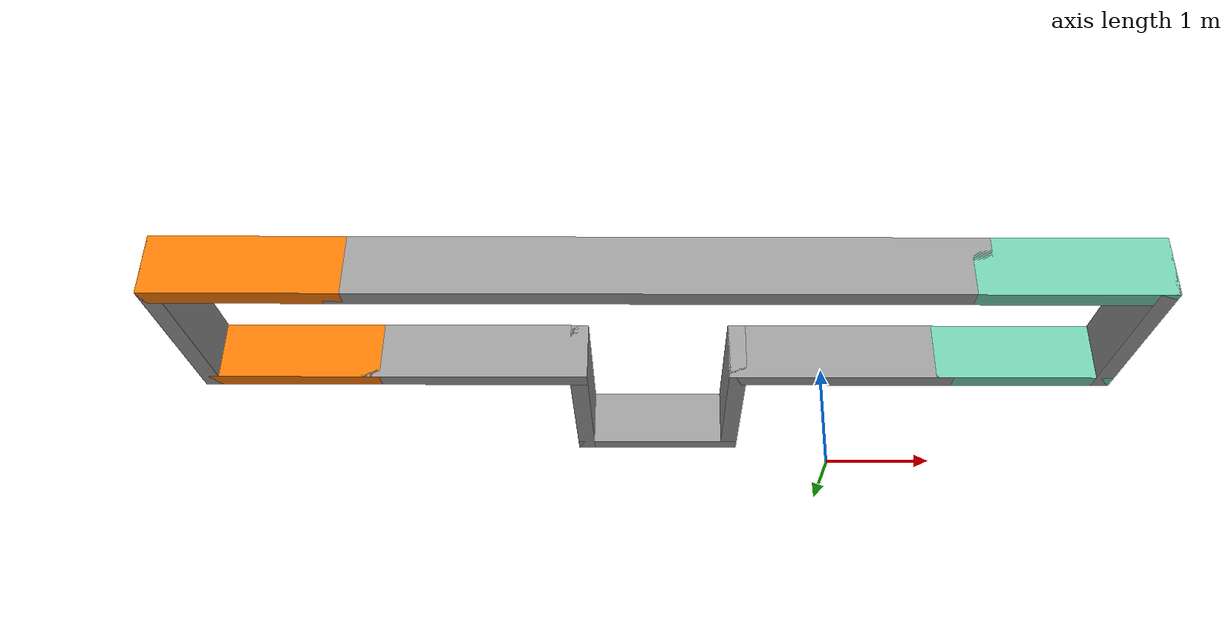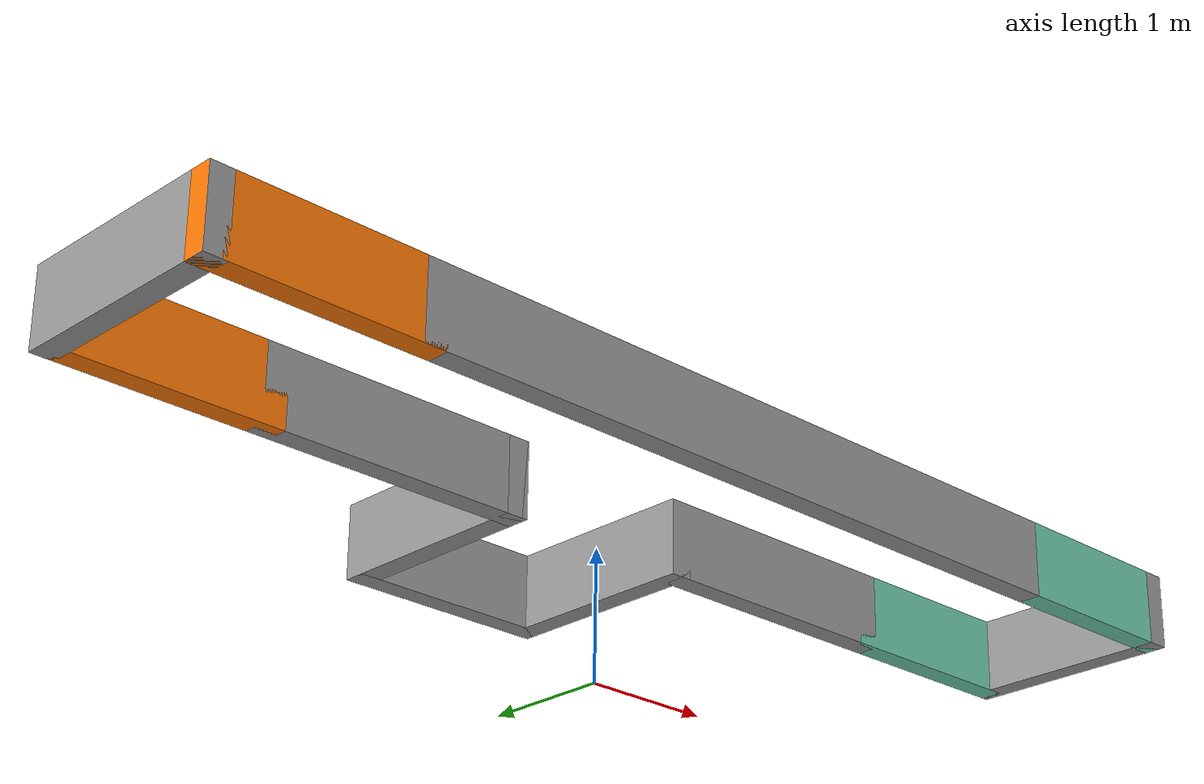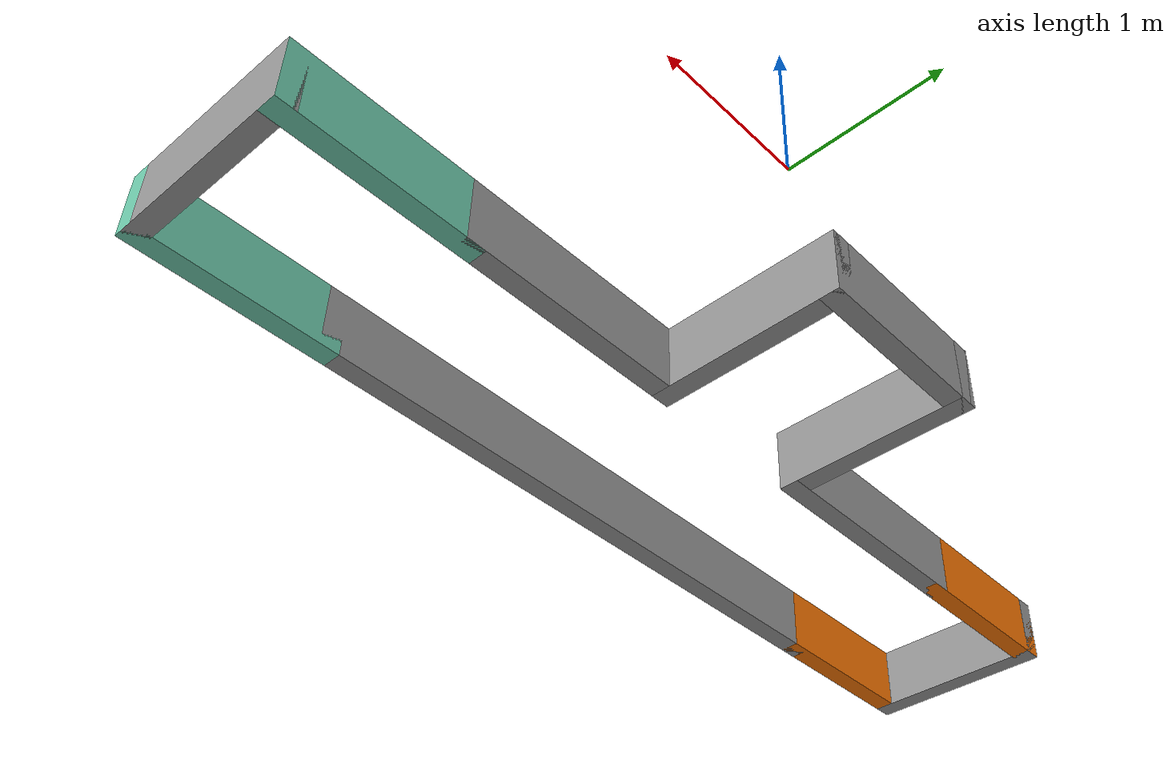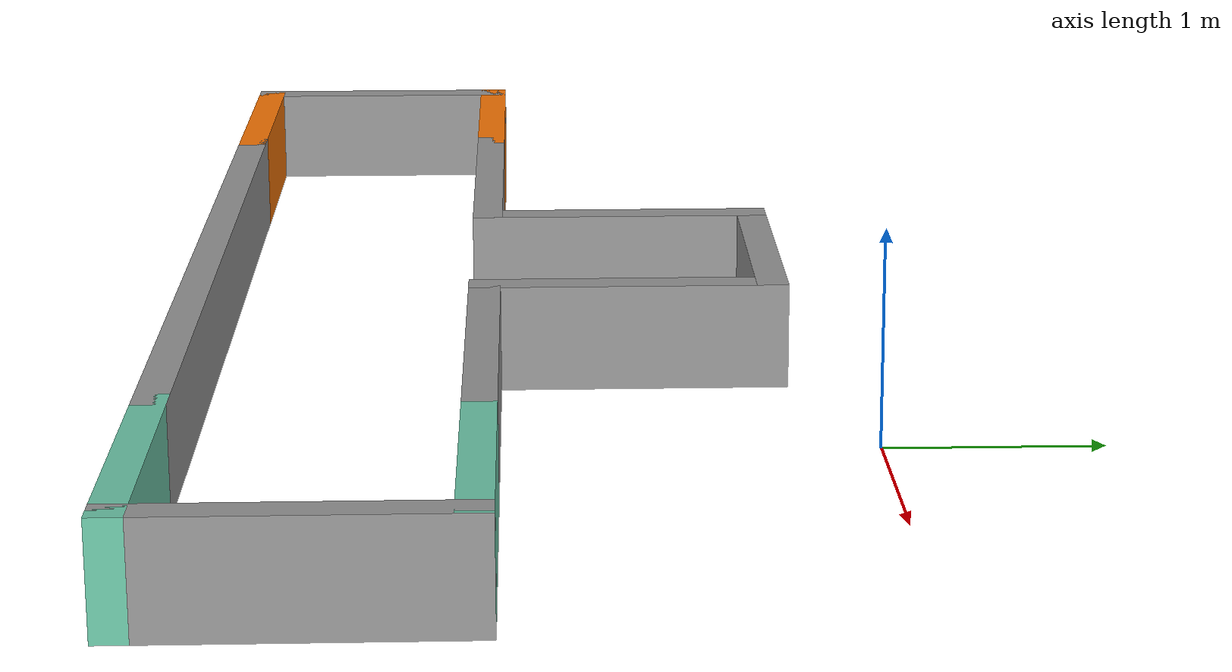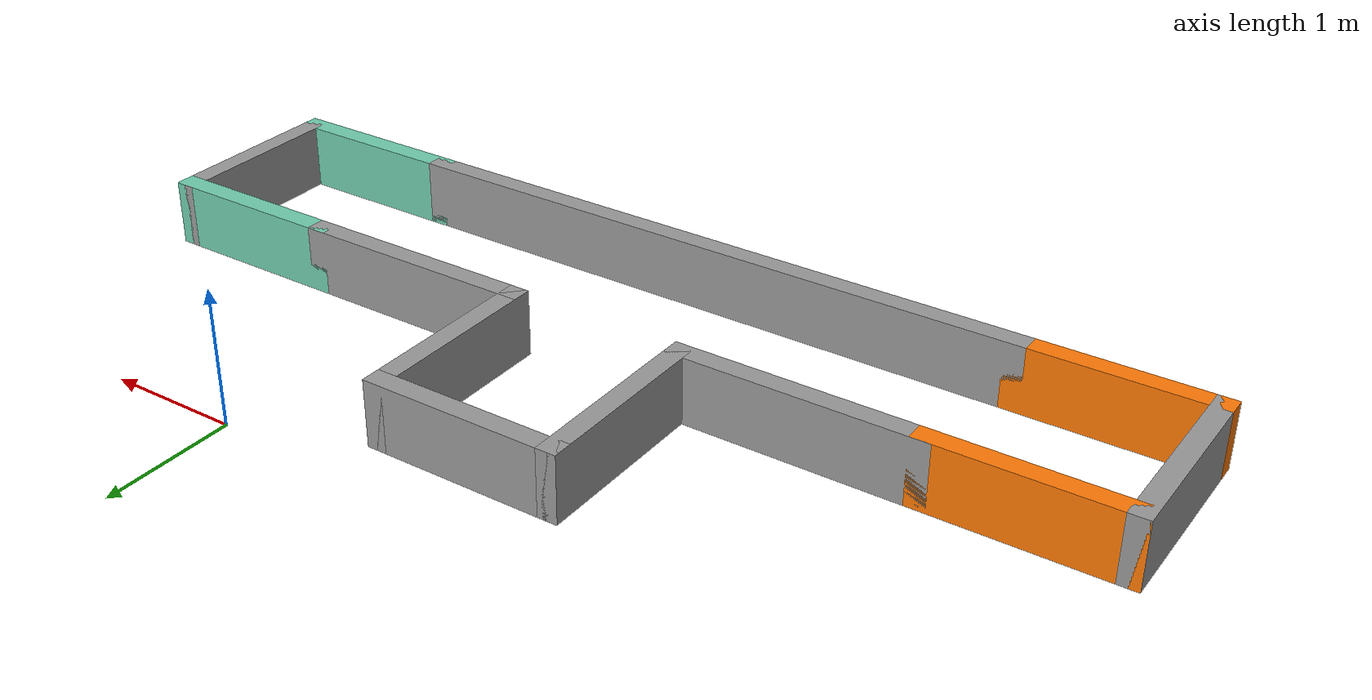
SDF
<sdf version='1.6'>
  <model name='mission5_map.world'>
    <pose frame=''>-1.675 -1.76 0 0 -0 0</pose>
    <link name='Wall_0'>
      <collision name='Wall_0_Collision'>
        <geometry>
          <box>
            <size>1.5 0.15 0.5</size>
          </box>
        </geometry>
        <pose frame=''>0 0 0.25 0 -0 0</pose>
      </collision>
      <visual name='Wall_0_Visual'>
        <pose frame=''>0 0 0.25 0 -0 0</pose>
        <geometry>
          <box>
            <size>1.5 0.15 0.5</size>
          </box>
        </geometry>
        <material>
          <script>
            <uri>file://media/materials/scripts/gazebo.material</uri>
            <name>Gazebo/Grey</name>
          </script>
          <ambient>0.996078 0.47451 0.0196078 1</ambient>
        </material>
        <meta>
          <layer>0</layer>
        </meta>
      </visual>
      <pose frame=''>-3.1 -1.35 0 0 -0 0</pose>
    </link>
    <link name='Wall_1'>
      <collision name='Wall_1_Collision'>
        <geometry>
          <box>
            <size>5 0.15 0.5</size>
          </box>
        </geometry>
        <pose frame=''>0 0 0.25 0 -0 0</pose>
      </collision>
      <visual name='Wall_1_Visual'>
        <pose frame=''>0 0 0.25 0 -0 0</pose>
        <geometry>
          <box>
            <size>5 0.15 0.5</size>
          </box>
        </geometry>
        <material>
          <script>
            <uri>file://media/materials/scripts/gazebo.material</uri>
            <name>Gazebo/Grey</name>
          </script>
          <ambient>1 1 1 1</ambient>
        </material>
        <meta>
          <layer>0</layer>
        </meta>
      </visual>
      <pose frame=''>0 -1.35 0 0 -0 0</pose>
    </link>
    <link name='Wall_18'>
      <collision name='Wall_18_Collision'>
        <geometry>
          <box>
            <size>1.5 0.15 0.5</size>
          </box>
        </geometry>
        <pose frame=''>0 0 0.25 0 -0 0</pose>
      </collision>
      <visual name='Wall_18_Visual'>
        <pose frame=''>0 0 0.25 0 -0 0</pose>
        <geometry>
          <box>
            <size>1.5 0.15 0.5</size>
          </box>
        </geometry>
        <material>
          <script>
            <uri>file://media/materials/scripts/gazebo.material</uri>
            <name>Gazebo/Grey</name>
          </script>
          <ambient>1 1 1 1</ambient>
        </material>
        <meta>
          <layer>0</layer>
        </meta>
      </visual>
      <pose frame=''>0 1.35 0 0 -0 0</pose>
    </link>
    <link name='Wall_19'>
      <collision name='Wall_19_Collision'>
        <geometry>
          <box>
            <size>1.5 0.15 0.5</size>
          </box>
        </geometry>
        <pose frame=''>0 0 0.25 0 -0 0</pose>
      </collision>
      <visual name='Wall_19_Visual'>
        <pose frame=''>0 0 0.25 0 -0 0</pose>
        <geometry>
          <box>
            <size>1.5 0.15 0.5</size>
          </box>
        </geometry>
        <material>
          <script>
            <uri>file://media/materials/scripts/gazebo.material</uri>
            <name>Gazebo/Grey</name>
          </script>
          <ambient>1 1 1 1</ambient>
        </material>
        <meta>
          <layer>0</layer>
        </meta>
      </visual>
      <pose frame=''>0.675 0.675 0 0 -0 -1.5708</pose>
    </link>
    <link name='Wall_2'>
      <collision name='Wall_2_Collision'>
        <geometry>
          <box>
            <size>1.5 0.15 0.5</size>
          </box>
        </geometry>
        <pose frame=''>0 0 0.25 0 -0 0</pose>
      </collision>
      <visual name='Wall_2_Visual'>
        <pose frame=''>0 0 0.25 0 -0 0</pose>
        <geometry>
          <box>
            <size>1.5 0.15 0.5</size>
          </box>
        </geometry>
        <material>
          <script>
            <uri>file://media/materials/scripts/gazebo.material</uri>
            <name>Gazebo/Grey</name>
          </script>
          <ambient>0.435294 0.796078 0.67451 1</ambient>
        </material>
        <meta>
          <layer>0</layer>
        </meta>
      </visual>
      <pose frame=''>3.1 -1.35 0 0 -0 0</pose>
    </link>
    <link name='Wall_20'>
      <collision name='Wall_20_Collision'>
        <geometry>
          <box>
            <size>1.9 0.15 0.5</size>
          </box>
        </geometry>
        <pose frame=''>0 0 0.25 0 -0 0</pose>
      </collision>
      <visual name='Wall_20_Visual'>
        <pose frame=''>0 0 0.25 0 -0 0</pose>
        <geometry>
          <box>
            <size>1.9 0.15 0.5</size>
          </box>
        </geometry>
        <material>
          <script>
            <uri>file://media/materials/scripts/gazebo.material</uri>
            <name>Gazebo/Grey</name>
          </script>
          <ambient>1 1 1 1</ambient>
        </material>
        <meta>
          <layer>0</layer>
        </meta>
      </visual>
      <pose frame=''>1.55 -0 0 0 -0 0</pose>
    </link>
    <link name='Wall_22'>
      <collision name='Wall_22_Collision'>
        <geometry>
          <box>
            <size>1.5 0.15 0.5</size>
          </box>
        </geometry>
        <pose frame=''>0 0 0.25 0 -0 0</pose>
      </collision>
      <visual name='Wall_22_Visual'>
        <pose frame=''>0 0 0.25 0 -0 0</pose>
        <geometry>
          <box>
            <size>1.5 0.15 0.5</size>
          </box>
        </geometry>
        <material>
          <script>
            <uri>file://media/materials/scripts/gazebo.material</uri>
            <name>Gazebo/Grey</name>
          </script>
          <ambient>0.435294 0.796078 0.67451 1</ambient>
        </material>
        <meta>
          <layer>0</layer>
        </meta>
      </visual>
      <pose frame=''>3.1 -0 0 0 -0 0</pose>
    </link>
    <link name='Wall_25'>
      <collision name='Wall_25_Collision'>
        <geometry>
          <box>
            <size>1.5 0.15 0.5</size>
          </box>
        </geometry>
        <pose frame=''>0 0 0.25 0 -0 0</pose>
      </collision>
      <visual name='Wall_25_Visual'>
        <pose frame=''>0 0 0.25 0 -0 0</pose>
        <geometry>
          <box>
            <size>1.5 0.15 0.5</size>
          </box>
        </geometry>
        <material>
          <script>
            <uri>file://media/materials/scripts/gazebo.material</uri>
            <name>Gazebo/Grey</name>
          </script>
          <ambient>1 1 1 1</ambient>
        </material>
        <meta>
          <layer>0</layer>
        </meta>
      </visual>
      <pose frame=''>3.775 -0.675 0 0 -0 -1.5708</pose>
    </link>
    <link name='Wall_4'>
      <collision name='Wall_4_Collision'>
        <geometry>
          <box>
            <size>1.5 0.15 0.5</size>
          </box>
        </geometry>
        <pose frame=''>0 0 0.25 0 -0 0</pose>
      </collision>
      <visual name='Wall_4_Visual'>
        <pose frame=''>0 0 0.25 0 -0 0</pose>
        <geometry>
          <box>
            <size>1.5 0.15 0.5</size>
          </box>
        </geometry>
        <material>
          <script>
            <uri>file://media/materials/scripts/gazebo.material</uri>
            <name>Gazebo/Grey</name>
          </script>
          <ambient>1 1 1 1</ambient>
        </material>
        <meta>
          <layer>0</layer>
        </meta>
      </visual>
      <pose frame=''>-3.775 -0.675 0 0 -0 1.5708</pose>
    </link>
    <link name='Wall_5'>
      <collision name='Wall_5_Collision'>
        <geometry>
          <box>
            <size>1.5 0.15 0.5</size>
          </box>
        </geometry>
        <pose frame=''>0 0 0.25 0 -0 0</pose>
      </collision>
      <visual name='Wall_5_Visual'>
        <pose frame=''>0 0 0.25 0 -0 0</pose>
        <geometry>
          <box>
            <size>1.5 0.15 0.5</size>
          </box>
        </geometry>
        <material>
          <script>
            <uri>file://media/materials/scripts/gazebo.material</uri>
            <name>Gazebo/Grey</name>
          </script>
          <ambient>0.996078 0.47451 0.0196078 1</ambient>
        </material>
        <meta>
          <layer>0</layer>
        </meta>
      </visual>
      <pose frame=''>-3.1 -0 0 0 -0 0</pose>
    </link>
    <link name='Wall_6'>
      <collision name='Wall_6_Collision'>
        <geometry>
          <box>
            <size>1.9 0.15 0.5</size>
          </box>
        </geometry>
        <pose frame=''>0 0 0.25 0 -0 0</pose>
      </collision>
      <visual name='Wall_6_Visual'>
        <pose frame=''>0 0 0.25 0 -0 0</pose>
        <geometry>
          <box>
            <size>1.9 0.15 0.5</size>
          </box>
        </geometry>
        <material>
          <script>
            <uri>file://media/materials/scripts/gazebo.material</uri>
            <name>Gazebo/Grey</name>
          </script>
          <ambient>1 1 1 1</ambient>
        </material>
        <meta>
          <layer>0</layer>
        </meta>
      </visual>
      <pose frame=''>-1.55 -0 0 0 -0 0</pose>
    </link>
    <link name='Wall_8'>
      <collision name='Wall_8_Collision'>
        <geometry>
          <box>
            <size>1.5 0.15 0.5</size>
          </box>
        </geometry>
        <pose frame=''>0 0 0.25 0 -0 0</pose>
      </collision>
      <visual name='Wall_8_Visual'>
        <pose frame=''>0 0 0.25 0 -0 0</pose>
        <geometry>
          <box>
            <size>1.5 0.15 0.5</size>
          </box>
        </geometry>
        <material>
          <script>
            <uri>file://media/materials/scripts/gazebo.material</uri>
            <name>Gazebo/Grey</name>
          </script>
          <ambient>1 1 1 1</ambient>
        </material>
        <meta>
          <layer>0</layer>
        </meta>
      </visual>
      <pose frame=''>-0.675 0.675 0 0 -0 1.5708</pose>
    </link>
    <static>1</static>
  </model>
</sdf>
